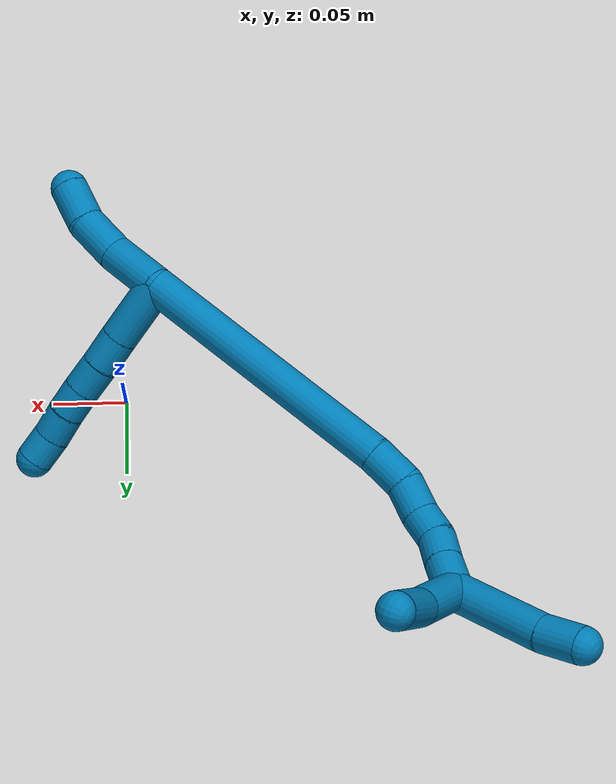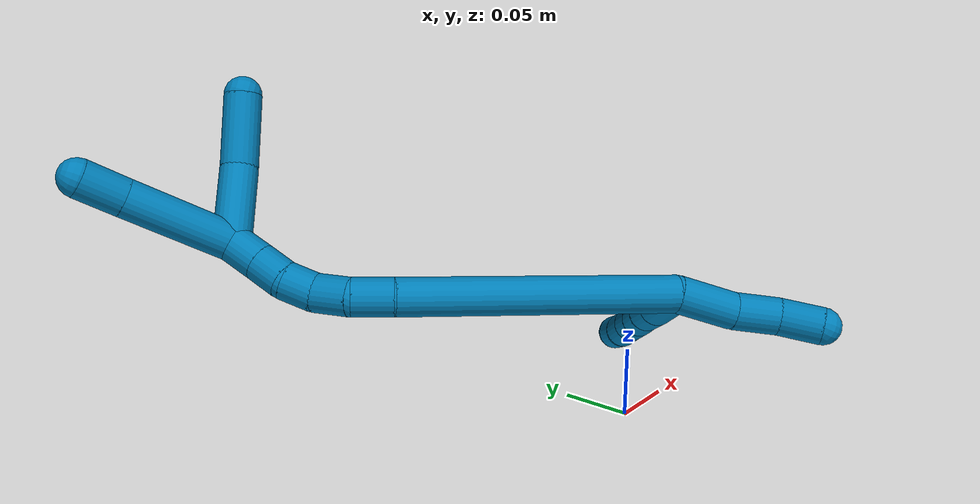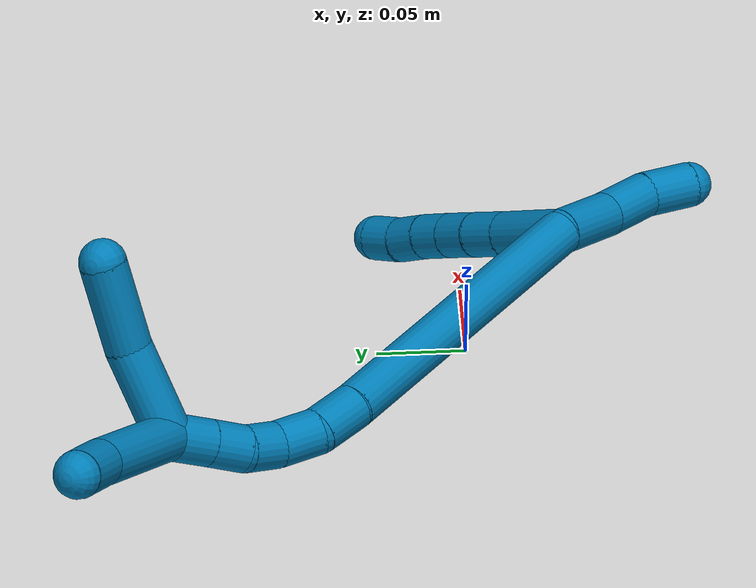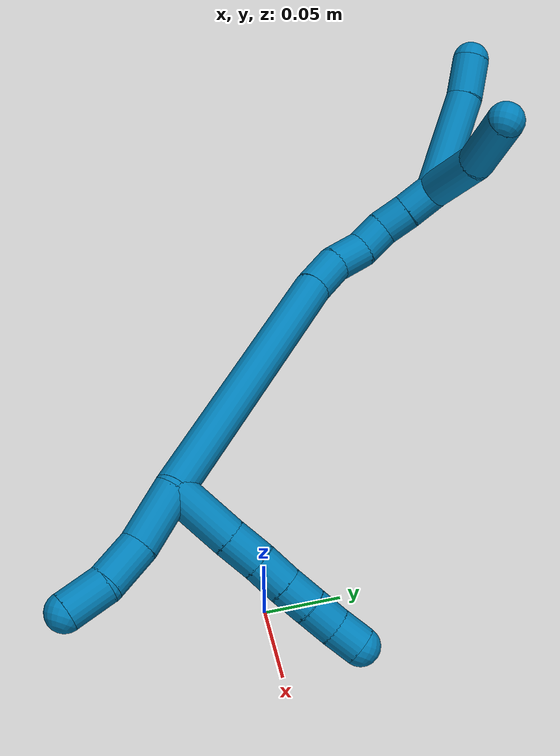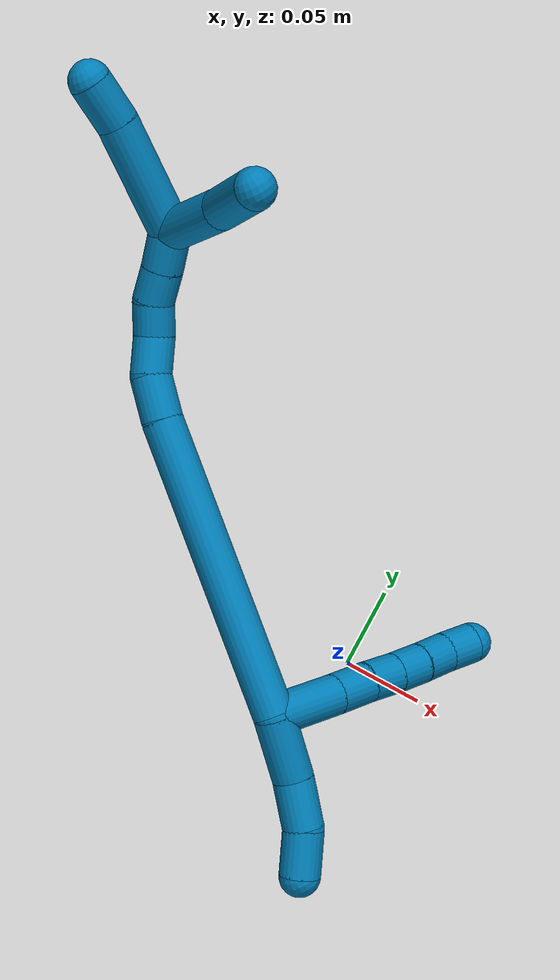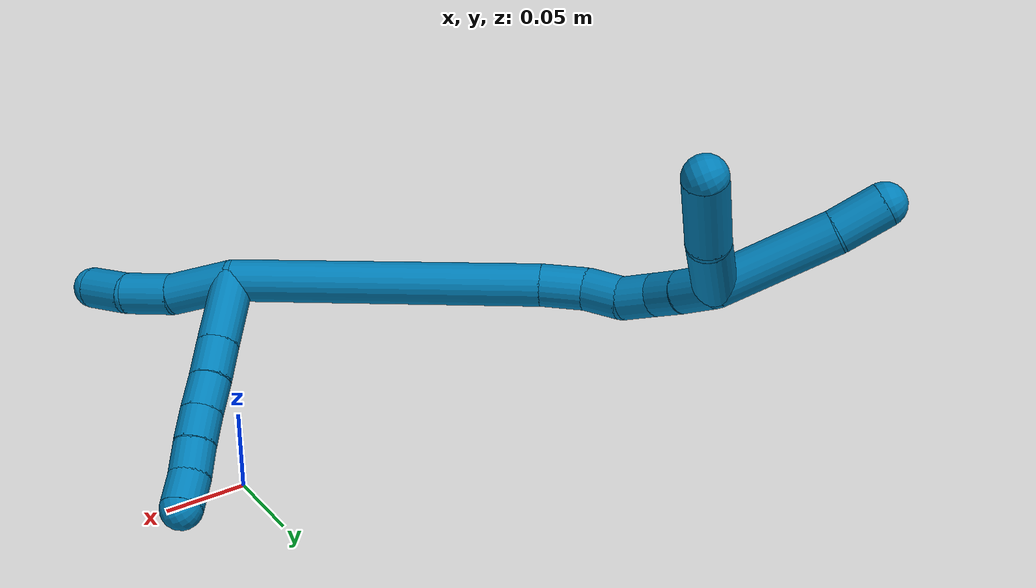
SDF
<sdf version="1.7">
 <world name="default">
  <model name="9">
   <static>0</static>
   <link name="9">
    <collision name="collision-cylinder-e_1_2_8">
     <pose>-0.008077 0.019144 -0.008073 -1.96984 -0.370758 0.550833</pose>
     <geometry><cylinder><radius>0.0125</radius><length>0.044583</length></cylinder></geometry>
     <surface>
      <friction><ode><mu>1.16</mu><mu2>1.16</mu2><slip1>0</slip1><slip2>0</slip2></ode></friction>
      <contact><ode><kp>1e+06</kp><kd>1</kd><max_vel>0</max_vel><min_depth>0.001</min_depth></ode></contact>
     </surface>
    </collision>
    <visual name="visual-cylinder-e_1_2_8">
     <pose>-0.008077 0.019144 -0.008073 -1.96984 -0.370758 0.550833</pose>
     <geometry><cylinder><radius>0.0125</radius><length>0.044583</length></cylinder></geometry>
     <material><ambient>0 0.490196 0.709804 1</ambient></material>
    </visual>
    <collision name="collision-cylinder-e_2_8_9">
     <pose>-0.020274 0.048685 -0.020054 -1.93044 -0.355263 0.507415</pose>
     <geometry><cylinder><radius>0.0125</radius><length>0.023694</length></cylinder></geometry>
     <surface>
      <friction><ode><mu>1.16</mu><mu2>1.16</mu2><slip1>0</slip1><slip2>0</slip2></ode></friction>
      <contact><ode><kp>1e+06</kp><kd>1</kd><max_vel>0</max_vel><min_depth>0.001</min_depth></ode></contact>
     </surface>
    </collision>
    <visual name="visual-cylinder-e_2_8_9">
     <pose>-0.020274 0.048685 -0.020054 -1.93044 -0.355263 0.507415</pose>
     <geometry><cylinder><radius>0.0125</radius><length>0.023694</length></cylinder></geometry>
     <material><ambient>0 0.490196 0.709804 1</ambient></material>
    </visual>
    <collision name="collision-cylinder-e_3_9_10">
     <pose>-0.02817 0.068157 -0.027998 -1.98919 -0.363221 0.550877</pose>
     <geometry><cylinder><radius>0.0125</radius><length>0.021249</length></cylinder></geometry>
     <surface>
      <friction><ode><mu>1.16</mu><mu2>1.16</mu2><slip1>0</slip1><slip2>0</slip2></ode></friction>
      <contact><ode><kp>1e+06</kp><kd>1</kd><max_vel>0</max_vel><min_depth>0.001</min_depth></ode></contact>
     </surface>
    </collision>
    <visual name="visual-cylinder-e_3_9_10">
     <pose>-0.02817 0.068157 -0.027998 -1.98919 -0.363221 0.550877</pose>
     <geometry><cylinder><radius>0.0125</radius><length>0.021249</length></cylinder></geometry>
     <material><ambient>0 0.490196 0.709804 1</ambient></material>
    </visual>
    <collision name="collision-cylinder-e_4_10_11">
     <pose>-0.035627 0.086034 -0.035431 -1.93912 -0.372071 0.535578</pose>
     <geometry><cylinder><radius>0.0125</radius><length>0.020258</length></cylinder></geometry>
     <surface>
      <friction><ode><mu>1.16</mu><mu2>1.16</mu2><slip1>0</slip1><slip2>0</slip2></ode></friction>
      <contact><ode><kp>1e+06</kp><kd>1</kd><max_vel>0</max_vel><min_depth>0.001</min_depth></ode></contact>
     </surface>
    </collision>
    <visual name="visual-cylinder-e_4_10_11">
     <pose>-0.035627 0.086034 -0.035431 -1.93912 -0.372071 0.535578</pose>
     <geometry><cylinder><radius>0.0125</radius><length>0.020258</length></cylinder></geometry>
     <material><ambient>0 0.490196 0.709804 1</ambient></material>
    </visual>
    <collision name="collision-cylinder-e_5_11_12">
     <pose>-0.043521 0.103415 -0.042065 -1.9316 -0.430695 0.612733</pose>
     <geometry><cylinder><radius>0.0125</radius><length>0.020178</length></cylinder></geometry>
     <surface>
      <friction><ode><mu>1.16</mu><mu2>1.16</mu2><slip1>0</slip1><slip2>0</slip2></ode></friction>
      <contact><ode><kp>1e+06</kp><kd>1</kd><max_vel>0</max_vel><min_depth>0.001</min_depth></ode></contact>
     </surface>
    </collision>
    <visual name="visual-cylinder-e_5_11_12">
     <pose>-0.043521 0.103415 -0.042065 -1.9316 -0.430695 0.612733</pose>
     <geometry><cylinder><radius>0.0125</radius><length>0.020178</length></cylinder></geometry>
     <material><ambient>0 0.490196 0.709804 1</ambient></material>
    </visual>
    <collision name="collision-cylinder-e_6_12_6">
     <pose>-0.050485 0.121103 -0.048434 -1.90201 -0.278171 0.387429</pose>
     <geometry><cylinder><radius>0.0125</radius><length>0.020038</length></cylinder></geometry>
     <surface>
      <friction><ode><mu>1.16</mu><mu2>1.16</mu2><slip1>0</slip1><slip2>0</slip2></ode></friction>
      <contact><ode><kp>1e+06</kp><kd>1</kd><max_vel>0</max_vel><min_depth>0.001</min_depth></ode></contact>
     </surface>
    </collision>
    <visual name="visual-cylinder-e_6_12_6">
     <pose>-0.050485 0.121103 -0.048434 -1.90201 -0.278171 0.387429</pose>
     <geometry><cylinder><radius>0.0125</radius><length>0.020038</length></cylinder></geometry>
     <material><ambient>0 0.490196 0.709804 1</ambient></material>
    </visual>
    <collision name="collision-cylinder-e_1_2_13">
     <pose>0.00212 -0.004018 -0.019875 2.94211 0.104162 0.960466</pose>
     <geometry><cylinder><radius>0.0125</radius><length>0.040776</length></cylinder></geometry>
     <surface>
      <friction><ode><mu>1.16</mu><mu2>1.16</mu2><slip1>0</slip1><slip2>0</slip2></ode></friction>
      <contact><ode><kp>1e+06</kp><kd>1</kd><max_vel>0</max_vel><min_depth>0.001</min_depth></ode></contact>
     </surface>
    </collision>
    <visual name="visual-cylinder-e_1_2_13">
     <pose>0.00212 -0.004018 -0.019875 2.94211 0.104162 0.960466</pose>
     <geometry><cylinder><radius>0.0125</radius><length>0.040776</length></cylinder></geometry>
     <material><ambient>0 0.490196 0.709804 1</ambient></material>
    </visual>
    <collision name="collision-cylinder-e_2_13_14">
     <pose>0.008566 -0.012719 -0.053709 2.8179 0.285785 1.44463</pose>
     <geometry><cylinder><radius>0.0125</radius><length>0.030691</length></cylinder></geometry>
     <surface>
      <friction><ode><mu>1.16</mu><mu2>1.16</mu2><slip1>0</slip1><slip2>0</slip2></ode></friction>
      <contact><ode><kp>1e+06</kp><kd>1</kd><max_vel>0</max_vel><min_depth>0.001</min_depth></ode></contact>
     </surface>
    </collision>
    <visual name="visual-cylinder-e_2_13_14">
     <pose>0.008566 -0.012719 -0.053709 2.8179 0.285785 1.44463</pose>
     <geometry><cylinder><radius>0.0125</radius><length>0.030691</length></cylinder></geometry>
     <material><ambient>0 0.490196 0.709804 1</ambient></material>
    </visual>
    <collision name="collision-cylinder-e_3_14_5">
     <pose>0.015877 -0.025275 -0.079185 2.54201 0.210807 0.659526</pose>
     <geometry><cylinder><radius>0.0125</radius><length>0.028534</length></cylinder></geometry>
     <surface>
      <friction><ode><mu>1.16</mu><mu2>1.16</mu2><slip1>0</slip1><slip2>0</slip2></ode></friction>
      <contact><ode><kp>1e+06</kp><kd>1</kd><max_vel>0</max_vel><min_depth>0.001</min_depth></ode></contact>
     </surface>
    </collision>
    <visual name="visual-cylinder-e_3_14_5">
     <pose>0.015877 -0.025275 -0.079185 2.54201 0.210807 0.659526</pose>
     <geometry><cylinder><radius>0.0125</radius><length>0.028534</length></cylinder></geometry>
     <material><ambient>0 0.490196 0.709804 1</ambient></material>
    </visual>
    <collision name="collision-cylinder-e_1_2_15">
     <pose>-0.035283 0.014323 0.084035 -0.168816 -0.392425 0.033632</pose>
     <geometry><cylinder><radius>0.0125</radius><length>0.18452</length></cylinder></geometry>
     <surface>
      <friction><ode><mu>1.16</mu><mu2>1.16</mu2><slip1>0</slip1><slip2>0</slip2></ode></friction>
      <contact><ode><kp>1e+06</kp><kd>1</kd><max_vel>0</max_vel><min_depth>0.001</min_depth></ode></contact>
     </surface>
    </collision>
    <visual name="visual-cylinder-e_1_2_15">
     <pose>-0.035283 0.014323 0.084035 -0.168816 -0.392425 0.033632</pose>
     <geometry><cylinder><radius>0.0125</radius><length>0.18452</length></cylinder></geometry>
     <material><ambient>0 0.490196 0.709804 1</ambient></material>
    </visual>
    <collision name="collision-cylinder-e_2_15_16">
     <pose>-0.075842 0.032167 0.179973 -0.287647 -0.401906 0.058985</pose>
     <geometry><cylinder><radius>0.0125</radius><length>0.026976</length></cylinder></geometry>
     <surface>
      <friction><ode><mu>1.16</mu><mu2>1.16</mu2><slip1>0</slip1><slip2>0</slip2></ode></friction>
      <contact><ode><kp>1e+06</kp><kd>1</kd><max_vel>0</max_vel><min_depth>0.001</min_depth></ode></contact>
     </surface>
    </collision>
    <visual name="visual-cylinder-e_2_15_16">
     <pose>-0.075842 0.032167 0.179973 -0.287647 -0.401906 0.058985</pose>
     <geometry><cylinder><radius>0.0125</radius><length>0.026976</length></cylinder></geometry>
     <material><ambient>0 0.490196 0.709804 1</ambient></material>
    </visual>
    <collision name="collision-cylinder-e_3_16_17">
     <pose>-0.084818 0.042405 0.200932 -0.63816 -0.317097 0.105548</pose>
     <geometry><cylinder><radius>0.0125</radius><length>0.023732</length></cylinder></geometry>
     <surface>
      <friction><ode><mu>1.16</mu><mu2>1.16</mu2><slip1>0</slip1><slip2>0</slip2></ode></friction>
      <contact><ode><kp>1e+06</kp><kd>1</kd><max_vel>0</max_vel><min_depth>0.001</min_depth></ode></contact>
     </surface>
    </collision>
    <visual name="visual-cylinder-e_3_16_17">
     <pose>-0.084818 0.042405 0.200932 -0.63816 -0.317097 0.105548</pose>
     <geometry><cylinder><radius>0.0125</radius><length>0.023732</length></cylinder></geometry>
     <material><ambient>0 0.490196 0.709804 1</ambient></material>
    </visual>
    <collision name="collision-cylinder-e_4_17_18">
     <pose>-0.088862 0.053651 0.219291 -0.453082 -0.033244 0.007663</pose>
     <geometry><cylinder><radius>0.0125</radius><length>0.020708</length></cylinder></geometry>
     <surface>
      <friction><ode><mu>1.16</mu><mu2>1.16</mu2><slip1>0</slip1><slip2>0</slip2></ode></friction>
      <contact><ode><kp>1e+06</kp><kd>1</kd><max_vel>0</max_vel><min_depth>0.001</min_depth></ode></contact>
     </surface>
    </collision>
    <visual name="visual-cylinder-e_4_17_18">
     <pose>-0.088862 0.053651 0.219291 -0.453082 -0.033244 0.007663</pose>
     <geometry><cylinder><radius>0.0125</radius><length>0.020708</length></cylinder></geometry>
     <material><ambient>0 0.490196 0.709804 1</ambient></material>
    </visual>
    <collision name="collision-cylinder-e_5_18_19">
     <pose>-0.087684 0.064799 0.236334 -0.707449 0.148435 -0.054897</pose>
     <geometry><cylinder><radius>0.0125</radius><length>0.020593</length></cylinder></geometry>
     <surface>
      <friction><ode><mu>1.16</mu><mu2>1.16</mu2><slip1>0</slip1><slip2>0</slip2></ode></friction>
      <contact><ode><kp>1e+06</kp><kd>1</kd><max_vel>0</max_vel><min_depth>0.001</min_depth></ode></contact>
     </surface>
    </collision>
    <visual name="visual-cylinder-e_5_18_19">
     <pose>-0.087684 0.064799 0.236334 -0.707449 0.148435 -0.054897</pose>
     <geometry><cylinder><radius>0.0125</radius><length>0.020593</length></cylinder></geometry>
     <material><ambient>0 0.490196 0.709804 1</ambient></material>
    </visual>
    <collision name="collision-cylinder-e_6_19_1">
     <pose>-0.08437 0.078414 0.253324 -0.647607 0.153151 -0.051489</pose>
     <geometry><cylinder><radius>0.0125</radius><length>0.023472</length></cylinder></geometry>
     <surface>
      <friction><ode><mu>1.16</mu><mu2>1.16</mu2><slip1>0</slip1><slip2>0</slip2></ode></friction>
      <contact><ode><kp>1e+06</kp><kd>1</kd><max_vel>0</max_vel><min_depth>0.001</min_depth></ode></contact>
     </surface>
    </collision>
    <visual name="visual-cylinder-e_6_19_1">
     <pose>-0.08437 0.078414 0.253324 -0.647607 0.153151 -0.051489</pose>
     <geometry><cylinder><radius>0.0125</radius><length>0.023472</length></cylinder></geometry>
     <material><ambient>0 0.490196 0.709804 1</ambient></material>
    </visual>
    <collision name="collision-cylinder-e_1_1_20">
     <pose>-0.061173 0.098919 0.267032 -1.25204 0.984342 -0.73968</pose>
     <geometry><cylinder><radius>0.0125</radius><length>0.051404</length></cylinder></geometry>
     <surface>
      <friction><ode><mu>1.16</mu><mu2>1.16</mu2><slip1>0</slip1><slip2>0</slip2></ode></friction>
      <contact><ode><kp>1e+06</kp><kd>1</kd><max_vel>0</max_vel><min_depth>0.001</min_depth></ode></contact>
     </surface>
    </collision>
    <visual name="visual-cylinder-e_1_1_20">
     <pose>-0.061173 0.098919 0.267032 -1.25204 0.984342 -0.73968</pose>
     <geometry><cylinder><radius>0.0125</radius><length>0.051404</length></cylinder></geometry>
     <material><ambient>0 0.490196 0.709804 1</ambient></material>
    </visual>
    <collision name="collision-cylinder-e_2_20_4">
     <pose>-0.017715 0.120224 0.278074 -0.869577 1.13729 -0.577035</pose>
     <geometry><cylinder><radius>0.0125</radius><length>0.048596</length></cylinder></geometry>
     <surface>
      <friction><ode><mu>1.16</mu><mu2>1.16</mu2><slip1>0</slip1><slip2>0</slip2></ode></friction>
      <contact><ode><kp>1e+06</kp><kd>1</kd><max_vel>0</max_vel><min_depth>0.001</min_depth></ode></contact>
     </surface>
    </collision>
    <visual name="visual-cylinder-e_2_20_4">
     <pose>-0.017715 0.120224 0.278074 -0.869577 1.13729 -0.577035</pose>
     <geometry><cylinder><radius>0.0125</radius><length>0.048596</length></cylinder></geometry>
     <material><ambient>0 0.490196 0.709804 1</ambient></material>
    </visual>
    <collision name="collision-cylinder-e_1_1_21">
     <pose>-0.08122 0.086094 0.29804 -0.019245 0.038318 -0.000369</pose>
     <geometry><cylinder><radius>0.0125</radius><length>0.070997</length></cylinder></geometry>
     <surface>
      <friction><ode><mu>1.16</mu><mu2>1.16</mu2><slip1>0</slip1><slip2>0</slip2></ode></friction>
      <contact><ode><kp>1e+06</kp><kd>1</kd><max_vel>0</max_vel><min_depth>0.001</min_depth></ode></contact>
     </surface>
    </collision>
    <visual name="visual-cylinder-e_1_1_21">
     <pose>-0.08122 0.086094 0.29804 -0.019245 0.038318 -0.000369</pose>
     <geometry><cylinder><radius>0.0125</radius><length>0.070997</length></cylinder></geometry>
     <material><ambient>0 0.490196 0.709804 1</ambient></material>
    </visual>
    <collision name="collision-cylinder-e_2_21_3">
     <pose>-0.078861 0.085154 0.347882 0.112401 0.068967 0.003882</pose>
     <geometry><cylinder><radius>0.0125</radius><length>0.029003</length></cylinder></geometry>
     <surface>
      <friction><ode><mu>1.16</mu><mu2>1.16</mu2><slip1>0</slip1><slip2>0</slip2></ode></friction>
      <contact><ode><kp>1e+06</kp><kd>1</kd><max_vel>0</max_vel><min_depth>0.001</min_depth></ode></contact>
     </surface>
    </collision>
    <visual name="visual-cylinder-e_2_21_3">
     <pose>-0.078861 0.085154 0.347882 0.112401 0.068967 0.003882</pose>
     <geometry><cylinder><radius>0.0125</radius><length>0.029003</length></cylinder></geometry>
     <material><ambient>0 0.490196 0.709804 1</ambient></material>
    </visual>
    <collision name="collision-sphere-3">
     <pose>-0.077862 0.083531 0.362258 0 -0 0</pose>
     <geometry><sphere><radius>0.0125</radius></sphere></geometry>
     <surface>
      <friction><ode><mu>1.16</mu><mu2>1.16</mu2><slip1>0</slip1><slip2>0</slip2></ode></friction>
      <contact><ode><kp>1e+06</kp><kd>1</kd><max_vel>0</max_vel><min_depth>0.001</min_depth></ode></contact>
     </surface>
    </collision>
    <visual name="visual-sphere-3">
     <pose>-0.077862 0.083531 0.362258 0 -0 0</pose>
     <geometry><sphere><radius>0.0125</radius></sphere></geometry>
     <material><ambient>0 0.490196 0.709804 1</ambient></material>
    </visual>
    <collision name="collision-sphere-21">
     <pose>-0.07986 0.086777 0.333506 0 -0 0</pose>
     <geometry><sphere><radius>0.0125</radius></sphere></geometry>
     <surface>
      <friction><ode><mu>1.16</mu><mu2>1.16</mu2><slip1>0</slip1><slip2>0</slip2></ode></friction>
      <contact><ode><kp>1e+06</kp><kd>1</kd><max_vel>0</max_vel><min_depth>0.001</min_depth></ode></contact>
     </surface>
    </collision>
    <visual name="visual-sphere-21">
     <pose>-0.07986 0.086777 0.333506 0 -0 0</pose>
     <geometry><sphere><radius>0.0125</radius></sphere></geometry>
     <material><ambient>0 0.490196 0.709804 1</ambient></material>
    </visual>
    <collision name="collision-sphere-4">
     <pose>0.004336 0.128022 0.284659 0 -0 0</pose>
     <geometry><sphere><radius>0.0125</radius></sphere></geometry>
     <surface>
      <friction><ode><mu>1.16</mu><mu2>1.16</mu2><slip1>0</slip1><slip2>0</slip2></ode></friction>
      <contact><ode><kp>1e+06</kp><kd>1</kd><max_vel>0</max_vel><min_depth>0.001</min_depth></ode></contact>
     </surface>
    </collision>
    <visual name="visual-sphere-4">
     <pose>0.004336 0.128022 0.284659 0 -0 0</pose>
     <geometry><sphere><radius>0.0125</radius></sphere></geometry>
     <material><ambient>0 0.490196 0.709804 1</ambient></material>
    </visual>
    <collision name="collision-sphere-20">
     <pose>-0.039766 0.112426 0.271489 0 -0 0</pose>
     <geometry><sphere><radius>0.0125</radius></sphere></geometry>
     <surface>
      <friction><ode><mu>1.16</mu><mu2>1.16</mu2><slip1>0</slip1><slip2>0</slip2></ode></friction>
      <contact><ode><kp>1e+06</kp><kd>1</kd><max_vel>0</max_vel><min_depth>0.001</min_depth></ode></contact>
     </surface>
    </collision>
    <visual name="visual-sphere-20">
     <pose>-0.039766 0.112426 0.271489 0 -0 0</pose>
     <geometry><sphere><radius>0.0125</radius></sphere></geometry>
     <material><ambient>0 0.490196 0.709804 1</ambient></material>
    </visual>
    <collision name="collision-sphere-12">
     <pose>-0.047733 0.111992 -0.045301 0 -0 0</pose>
     <geometry><sphere><radius>0.0125</radius></sphere></geometry>
     <surface>
      <friction><ode><mu>1.16</mu><mu2>1.16</mu2><slip1>0</slip1><slip2>0</slip2></ode></friction>
      <contact><ode><kp>1e+06</kp><kd>1</kd><max_vel>0</max_vel><min_depth>0.001</min_depth></ode></contact>
     </surface>
    </collision>
    <visual name="visual-sphere-12">
     <pose>-0.047733 0.111992 -0.045301 0 -0 0</pose>
     <geometry><sphere><radius>0.0125</radius></sphere></geometry>
     <material><ambient>0 0.490196 0.709804 1</ambient></material>
    </visual>
    <collision name="collision-sphere-11">
     <pose>-0.039309 0.094837 -0.038828 0 -0 0</pose>
     <geometry><sphere><radius>0.0125</radius></sphere></geometry>
     <surface>
      <friction><ode><mu>1.16</mu><mu2>1.16</mu2><slip1>0</slip1><slip2>0</slip2></ode></friction>
      <contact><ode><kp>1e+06</kp><kd>1</kd><max_vel>0</max_vel><min_depth>0.001</min_depth></ode></contact>
     </surface>
    </collision>
    <visual name="visual-sphere-11">
     <pose>-0.039309 0.094837 -0.038828 0 -0 0</pose>
     <geometry><sphere><radius>0.0125</radius></sphere></geometry>
     <material><ambient>0 0.490196 0.709804 1</ambient></material>
    </visual>
    <collision name="collision-sphere-10">
     <pose>-0.031944 0.077231 -0.032033 0 -0 0</pose>
     <geometry><sphere><radius>0.0125</radius></sphere></geometry>
     <surface>
      <friction><ode><mu>1.16</mu><mu2>1.16</mu2><slip1>0</slip1><slip2>0</slip2></ode></friction>
      <contact><ode><kp>1e+06</kp><kd>1</kd><max_vel>0</max_vel><min_depth>0.001</min_depth></ode></contact>
     </surface>
    </collision>
    <visual name="visual-sphere-10">
     <pose>-0.031944 0.077231 -0.032033 0 -0 0</pose>
     <geometry><sphere><radius>0.0125</radius></sphere></geometry>
     <material><ambient>0 0.490196 0.709804 1</ambient></material>
    </visual>
    <collision name="collision-sphere-9">
     <pose>-0.024395 0.059082 -0.023963 0 -0 0</pose>
     <geometry><sphere><radius>0.0125</radius></sphere></geometry>
     <surface>
      <friction><ode><mu>1.16</mu><mu2>1.16</mu2><slip1>0</slip1><slip2>0</slip2></ode></friction>
      <contact><ode><kp>1e+06</kp><kd>1</kd><max_vel>0</max_vel><min_depth>0.001</min_depth></ode></contact>
     </surface>
    </collision>
    <visual name="visual-sphere-9">
     <pose>-0.024395 0.059082 -0.023963 0 -0 0</pose>
     <geometry><sphere><radius>0.0125</radius></sphere></geometry>
     <material><ambient>0 0.490196 0.709804 1</ambient></material>
    </visual>
    <collision name="collision-sphere-2">
     <geometry><sphere><radius>0.0125</radius></sphere></geometry>
     <surface>
      <friction><ode><mu>1.16</mu><mu2>1.16</mu2><slip1>0</slip1><slip2>0</slip2></ode></friction>
      <contact><ode><kp>1e+06</kp><kd>1</kd><max_vel>0</max_vel><min_depth>0.001</min_depth></ode></contact>
     </surface>
    </collision>
    <visual name="visual-sphere-2">
     <geometry><sphere><radius>0.0125</radius></sphere></geometry>
     <material><ambient>0 0.490196 0.709804 1</ambient></material>
    </visual>
    <collision name="collision-sphere-19">
     <pose>-0.086161 0.071417 0.244074 0 -0 0</pose>
     <geometry><sphere><radius>0.0125</radius></sphere></geometry>
     <surface>
      <friction><ode><mu>1.16</mu><mu2>1.16</mu2><slip1>0</slip1><slip2>0</slip2></ode></friction>
      <contact><ode><kp>1e+06</kp><kd>1</kd><max_vel>0</max_vel><min_depth>0.001</min_depth></ode></contact>
     </surface>
    </collision>
    <visual name="visual-sphere-19">
     <pose>-0.086161 0.071417 0.244074 0 -0 0</pose>
     <geometry><sphere><radius>0.0125</radius></sphere></geometry>
     <material><ambient>0 0.490196 0.709804 1</ambient></material>
    </visual>
    <collision name="collision-sphere-8">
     <pose>-0.016153 0.038289 -0.016145 0 -0 0</pose>
     <geometry><sphere><radius>0.0125</radius></sphere></geometry>
     <surface>
      <friction><ode><mu>1.16</mu><mu2>1.16</mu2><slip1>0</slip1><slip2>0</slip2></ode></friction>
      <contact><ode><kp>1e+06</kp><kd>1</kd><max_vel>0</max_vel><min_depth>0.001</min_depth></ode></contact>
     </surface>
    </collision>
    <visual name="visual-sphere-8">
     <pose>-0.016153 0.038289 -0.016145 0 -0 0</pose>
     <geometry><sphere><radius>0.0125</radius></sphere></geometry>
     <material><ambient>0 0.490196 0.709804 1</ambient></material>
    </visual>
    <collision name="collision-sphere-6">
     <pose>-0.053236 0.130213 -0.051567 0 -0 0</pose>
     <geometry><sphere><radius>0.0125</radius></sphere></geometry>
     <surface>
      <friction><ode><mu>1.16</mu><mu2>1.16</mu2><slip1>0</slip1><slip2>0</slip2></ode></friction>
      <contact><ode><kp>1e+06</kp><kd>1</kd><max_vel>0</max_vel><min_depth>0.001</min_depth></ode></contact>
     </surface>
    </collision>
    <visual name="visual-sphere-6">
     <pose>-0.053236 0.130213 -0.051567 0 -0 0</pose>
     <geometry><sphere><radius>0.0125</radius></sphere></geometry>
     <material><ambient>0 0.490196 0.709804 1</ambient></material>
    </visual>
    <collision name="collision-sphere-13">
     <pose>0.00424 -0.008036 -0.039751 0 -0 0</pose>
     <geometry><sphere><radius>0.0125</radius></sphere></geometry>
     <surface>
      <friction><ode><mu>1.16</mu><mu2>1.16</mu2><slip1>0</slip1><slip2>0</slip2></ode></friction>
      <contact><ode><kp>1e+06</kp><kd>1</kd><max_vel>0</max_vel><min_depth>0.001</min_depth></ode></contact>
     </surface>
    </collision>
    <visual name="visual-sphere-13">
     <pose>0.00424 -0.008036 -0.039751 0 -0 0</pose>
     <geometry><sphere><radius>0.0125</radius></sphere></geometry>
     <material><ambient>0 0.490196 0.709804 1</ambient></material>
    </visual>
    <collision name="collision-sphere-14">
     <pose>0.012892 -0.017402 -0.067667 0 -0 0</pose>
     <geometry><sphere><radius>0.0125</radius></sphere></geometry>
     <surface>
      <friction><ode><mu>1.16</mu><mu2>1.16</mu2><slip1>0</slip1><slip2>0</slip2></ode></friction>
      <contact><ode><kp>1e+06</kp><kd>1</kd><max_vel>0</max_vel><min_depth>0.001</min_depth></ode></contact>
     </surface>
    </collision>
    <visual name="visual-sphere-14">
     <pose>0.012892 -0.017402 -0.067667 0 -0 0</pose>
     <geometry><sphere><radius>0.0125</radius></sphere></geometry>
     <material><ambient>0 0.490196 0.709804 1</ambient></material>
    </visual>
    <collision name="collision-sphere-5">
     <pose>0.018862 -0.033147 -0.090702 0 -0 0</pose>
     <geometry><sphere><radius>0.0125</radius></sphere></geometry>
     <surface>
      <friction><ode><mu>1.16</mu><mu2>1.16</mu2><slip1>0</slip1><slip2>0</slip2></ode></friction>
      <contact><ode><kp>1e+06</kp><kd>1</kd><max_vel>0</max_vel><min_depth>0.001</min_depth></ode></contact>
     </surface>
    </collision>
    <visual name="visual-sphere-5">
     <pose>0.018862 -0.033147 -0.090702 0 -0 0</pose>
     <geometry><sphere><radius>0.0125</radius></sphere></geometry>
     <material><ambient>0 0.490196 0.709804 1</ambient></material>
    </visual>
    <collision name="collision-sphere-15">
     <pose>-0.070566 0.028646 0.16807 0 -0 0</pose>
     <geometry><sphere><radius>0.0125</radius></sphere></geometry>
     <surface>
      <friction><ode><mu>1.16</mu><mu2>1.16</mu2><slip1>0</slip1><slip2>0</slip2></ode></friction>
      <contact><ode><kp>1e+06</kp><kd>1</kd><max_vel>0</max_vel><min_depth>0.001</min_depth></ode></contact>
     </surface>
    </collision>
    <visual name="visual-sphere-15">
     <pose>-0.070566 0.028646 0.16807 0 -0 0</pose>
     <geometry><sphere><radius>0.0125</radius></sphere></geometry>
     <material><ambient>0 0.490196 0.709804 1</ambient></material>
    </visual>
    <collision name="collision-sphere-16">
     <pose>-0.081118 0.035689 0.191876 0 -0 0</pose>
     <geometry><sphere><radius>0.0125</radius></sphere></geometry>
     <surface>
      <friction><ode><mu>1.16</mu><mu2>1.16</mu2><slip1>0</slip1><slip2>0</slip2></ode></friction>
      <contact><ode><kp>1e+06</kp><kd>1</kd><max_vel>0</max_vel><min_depth>0.001</min_depth></ode></contact>
     </surface>
    </collision>
    <visual name="visual-sphere-16">
     <pose>-0.081118 0.035689 0.191876 0 -0 0</pose>
     <geometry><sphere><radius>0.0125</radius></sphere></geometry>
     <material><ambient>0 0.490196 0.709804 1</ambient></material>
    </visual>
    <collision name="collision-sphere-17">
     <pose>-0.088518 0.049121 0.209987 0 -0 0</pose>
     <geometry><sphere><radius>0.0125</radius></sphere></geometry>
     <surface>
      <friction><ode><mu>1.16</mu><mu2>1.16</mu2><slip1>0</slip1><slip2>0</slip2></ode></friction>
      <contact><ode><kp>1e+06</kp><kd>1</kd><max_vel>0</max_vel><min_depth>0.001</min_depth></ode></contact>
     </surface>
    </collision>
    <visual name="visual-sphere-17">
     <pose>-0.088518 0.049121 0.209987 0 -0 0</pose>
     <geometry><sphere><radius>0.0125</radius></sphere></geometry>
     <material><ambient>0 0.490196 0.709804 1</ambient></material>
    </visual>
    <collision name="collision-sphere-18">
     <pose>-0.089206 0.058181 0.228595 0 -0 0</pose>
     <geometry><sphere><radius>0.0125</radius></sphere></geometry>
     <surface>
      <friction><ode><mu>1.16</mu><mu2>1.16</mu2><slip1>0</slip1><slip2>0</slip2></ode></friction>
      <contact><ode><kp>1e+06</kp><kd>1</kd><max_vel>0</max_vel><min_depth>0.001</min_depth></ode></contact>
     </surface>
    </collision>
    <visual name="visual-sphere-18">
     <pose>-0.089206 0.058181 0.228595 0 -0 0</pose>
     <geometry><sphere><radius>0.0125</radius></sphere></geometry>
     <material><ambient>0 0.490196 0.709804 1</ambient></material>
    </visual>
    <collision name="collision-sphere-1">
     <pose>-0.08258 0.085411 0.262574 0 -0 0</pose>
     <geometry><sphere><radius>0.0125</radius></sphere></geometry>
     <surface>
      <friction><ode><mu>1.16</mu><mu2>1.16</mu2><slip1>0</slip1><slip2>0</slip2></ode></friction>
      <contact><ode><kp>1e+06</kp><kd>1</kd><max_vel>0</max_vel><min_depth>0.001</min_depth></ode></contact>
     </surface>
    </collision>
    <visual name="visual-sphere-1">
     <pose>-0.08258 0.085411 0.262574 0 -0 0</pose>
     <geometry><sphere><radius>0.0125</radius></sphere></geometry>
     <material><ambient>0 0.490196 0.709804 1</ambient></material>
    </visual>
    <inertial>
     <pose>-0.042003 0.048998 0.120383 0 -0 0</pose>
     <mass>0.75</mass>
     <inertia>
      <ixx>0.000592</ixx>
      <ixy>0</ixy>
      <ixz>0</ixz>
      <iyy>0.000626</iyy>
      <iyz>0</iyz>
      <izz>9.5e-05</izz>
     </inertia>
    </inertial>
   </link>
   <pose>-0.025684 -0.049105 0.110189 -0.106917 -1.11359 -0.454723</pose>
  </model>
 </world>
</sdf>
